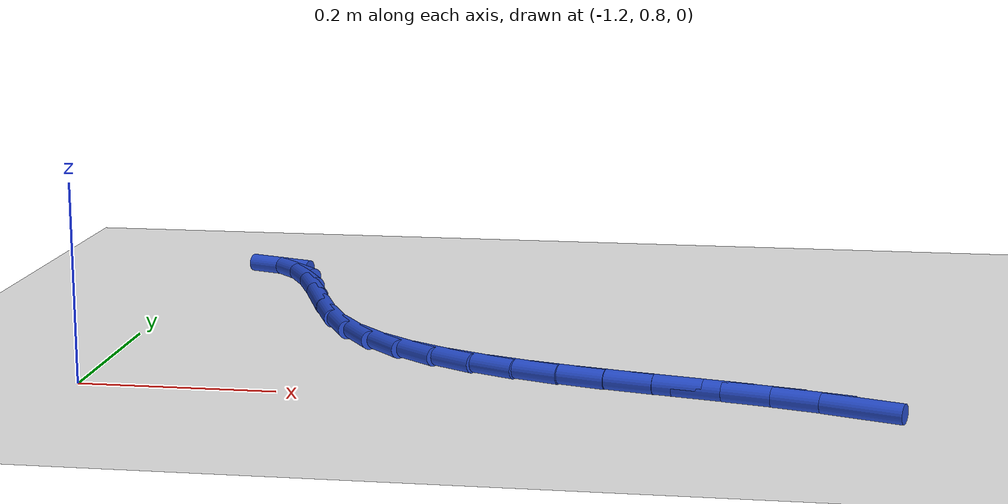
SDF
<sdf version="1.6">
 <world name="default">
  <model name="ground_plane">
   <static>1</static>
   <link name="link">
    <collision name="collision">
     <geometry><plane><normal>0 0 1</normal><size>100 100</size></plane></geometry>
     <surface><friction><ode><mu>100</mu><mu2>50</mu2></ode></friction></surface>
    </collision>
    <visual name="visual">
     <cast_shadows>0</cast_shadows>
     <geometry><plane><normal>0 0 1</normal><size>100 100</size></plane></geometry>
     <material>
      <script><uri>file://media/materials/scripts/gazebo.material</uri><name>Gazebo/WhiteGlow</name></script>
     </material>
    </visual>
   </link>
  </model>
  <model name="line">
   <link name="link_20">
    <pose>-0.43947029616138683 0.7882605560169792 0.01 0 1.57 -0.34804617072365196</pose>
    <collision name="collision">
     <geometry><cylinder><radius>0.01</radius><length>0.08</length></cylinder></geometry>
    </collision>
    <visual name="visual">
     <material>
      <script><name>Gazebo/Blue</name><uri>file://media/materials/scripts/gazebo.material</uri></script>
     </material>
     <geometry><cylinder><radius>0.01</radius><length>0.08</length></cylinder></geometry>
    </visual>
   </link>
   <link name="link_21">
    <pose>-0.4847260487259708 0.8046800626690344 0.01 0 1.57 -0.28691967845813743</pose>
    <collision name="collision">
     <geometry><cylinder><radius>0.01</radius><length>0.08</length></cylinder></geometry>
    </collision>
    <visual name="visual">
     <material>
      <script><name>Gazebo/Blue</name><uri>file://media/materials/scripts/gazebo.material</uri></script>
     </material>
     <geometry><cylinder><radius>0.01</radius><length>0.08</length></cylinder></geometry>
    </visual>
   </link>
   <link name="link_22">
    <pose>-0.5314928751247355 0.8184791400819844 0.01 0 1.57 -0.24708174238288394</pose>
    <collision name="collision">
     <geometry><cylinder><radius>0.01</radius><length>0.08</length></cylinder></geometry>
    </collision>
    <visual name="visual">
     <material>
      <script><name>Gazebo/Blue</name><uri>file://media/materials/scripts/gazebo.material</uri></script>
     </material>
     <geometry><cylinder><radius>0.01</radius><length>0.08</length></cylinder></geometry>
    </visual>
   </link>
   <link name="link_23">
    <pose>-0.5792292818981033 0.8305199660823602 0.01 0 1.57 -0.2273875629762651</pose>
    <collision name="collision">
     <geometry><cylinder><radius>0.01</radius><length>0.08</length></cylinder></geometry>
    </collision>
    <visual name="visual">
     <material>
      <script><name>Gazebo/Blue</name><uri>file://media/materials/scripts/gazebo.material</uri></script>
     </material>
     <geometry><cylinder><radius>0.01</radius><length>0.08</length></cylinder></geometry>
    </visual>
   </link>
   <link name="link_24">
    <pose>-0.6273937755864961 0.8416647184966923 0.01 0 1.57 -0.22723635034153497</pose>
    <collision name="collision">
     <geometry><cylinder><radius>0.01</radius><length>0.08</length></cylinder></geometry>
    </collision>
    <visual name="visual">
     <material>
      <script><name>Gazebo/Blue</name><uri>file://media/materials/scripts/gazebo.material</uri></script>
     </material>
     <geometry><cylinder><radius>0.01</radius><length>0.08</length></cylinder></geometry>
    </visual>
   </link>
   <link name="link_25">
    <pose>-0.6754448627303362 0.852775575151511 0.01 0 1.57 -0.24676687477948778</pose>
    <collision name="collision">
     <geometry><cylinder><radius>0.01</radius><length>0.08</length></cylinder></geometry>
    </collision>
    <visual name="visual">
     <material>
      <script><name>Gazebo/Blue</name><uri>file://media/materials/scripts/gazebo.material</uri></script>
     </material>
     <geometry><cylinder><radius>0.01</radius><length>0.08</length></cylinder></geometry>
    </visual>
   </link>
   <link name="link_26">
    <pose>-0.722841049870046 0.8647147138733469 0.01 0 1.57 -0.28687648122449777</pose>
    <collision name="collision">
     <geometry><cylinder><radius>0.01</radius><length>0.08</length></cylinder></geometry>
    </collision>
    <visual name="visual">
     <material>
      <script><name>Gazebo/Blue</name><uri>file://media/materials/scripts/gazebo.material</uri></script>
     </material>
     <geometry><cylinder><radius>0.01</radius><length>0.08</length></cylinder></geometry>
    </visual>
   </link>
   <link name="link_27">
    <pose>-0.7690408435460478 0.8783443124887305 0.01 0 1.57 -0.34905444501290284</pose>
    <collision name="collision">
     <geometry><cylinder><radius>0.01</radius><length>0.08</length></cylinder></geometry>
    </collision>
    <visual name="visual">
     <material>
      <script><name>Gazebo/Blue</name><uri>file://media/materials/scripts/gazebo.material</uri></script>
     </material>
     <geometry><cylinder><radius>0.01</radius><length>0.08</length></cylinder></geometry>
    </visual>
   </link>
   <link name="link_28">
    <pose>-0.8135027502987635 0.8945265488241919 0.01 0 1.57 -0.4349102155003879</pose>
    <collision name="collision">
     <geometry><cylinder><radius>0.01</radius><length>0.08</length></cylinder></geometry>
    </collision>
    <visual name="visual">
     <material>
      <script><name>Gazebo/Blue</name><uri>file://media/materials/scripts/gazebo.material</uri></script>
     </material>
     <geometry><cylinder><radius>0.01</radius><length>0.08</length></cylinder></geometry>
    </visual>
   </link>
   <link name="link_29">
    <pose>-0.8556852766686156 0.9141236007062622 0.01 0 1.57 -0.545207552889291</pose>
    <collision name="collision">
     <geometry><cylinder><radius>0.01</radius><length>0.08</length></cylinder></geometry>
    </collision>
    <visual name="visual">
     <material>
      <script><name>Gazebo/Blue</name><uri>file://media/materials/scripts/gazebo.material</uri></script>
     </material>
     <geometry><cylinder><radius>0.01</radius><length>0.08</length></cylinder></geometry>
    </visual>
   </link>
   <link name="link_30">
    <pose>-0.8950469291960258 0.9379976459614712 0.01 0 1.57 -0.6783516136781377</pose>
    <collision name="collision">
     <geometry><cylinder><radius>0.01</radius><length>0.08</length></cylinder></geometry>
    </collision>
    <visual name="visual">
     <material>
      <script><name>Gazebo/Blue</name><uri>file://media/materials/scripts/gazebo.material</uri></script>
     </material>
     <geometry><cylinder><radius>0.01</radius><length>0.08</length></cylinder></geometry>
    </visual>
   </link>
   <link name="link_31">
    <pose>-0.9310462144214172 0.9670108624163503 0.01 0 1.57 -0.8288686219652901</pose>
    <collision name="collision">
     <geometry><cylinder><radius>0.01</radius><length>0.08</length></cylinder></geometry>
    </collision>
    <visual name="visual">
     <material>
      <script><name>Gazebo/Blue</name><uri>file://media/materials/scripts/gazebo.material</uri></script>
     </material>
     <geometry><cylinder><radius>0.01</radius><length>0.08</length></cylinder></geometry>
    </visual>
   </link>
   <link name="link_32">
    <pose>-0.9631416388852112 1.0020254278974292 0.01 0 1.57 -0.9872090528609867</pose>
    <collision name="collision">
     <geometry><cylinder><radius>0.01</radius><length>0.08</length></cylinder></geometry>
    </collision>
    <visual name="visual">
     <material>
      <script><name>Gazebo/Blue</name><uri>file://media/materials/scripts/gazebo.material</uri></script>
     </material>
     <geometry><cylinder><radius>0.01</radius><length>0.08</length></cylinder></geometry>
    </visual>
   </link>
   <link name="link_33">
    <pose>-0.9907926886231171 1.0439014381811937 0.01 0 1.57 -1.1241796847085146</pose>
    <collision name="collision">
     <geometry><cylinder><radius>0.01</radius><length>0.08</length></cylinder></geometry>
    </collision>
    <visual name="visual">
     <material>
      <script><name>Gazebo/Blue</name><uri>file://media/materials/scripts/gazebo.material</uri></script>
     </material>
     <geometry><cylinder><radius>0.01</radius><length>0.08</length></cylinder></geometry>
    </visual>
   </link>
   <link name="link_34">
    <pose>-1.0139968040161436 1.0923554941402367 0.01 0 1.57 -1.1986816421628594</pose>
    <collision name="collision">
     <geometry><cylinder><radius>0.01</radius><length>0.08</length></cylinder></geometry>
    </collision>
    <visual name="visual">
     <material>
      <script><name>Gazebo/Blue</name><uri>file://media/materials/scripts/gazebo.material</uri></script>
     </material>
     <geometry><cylinder><radius>0.01</radius><length>0.08</length></cylinder></geometry>
    </visual>
   </link>
   <link name="link_35">
    <pose>-1.034179957176001 1.1440676587543366 0.01 0 1.57 -1.218198573939741</pose>
    <collision name="collision">
     <geometry><cylinder><radius>0.01</radius><length>0.08</length></cylinder></geometry>
    </collision>
    <visual name="visual">
     <material>
      <script><name>Gazebo/Blue</name><uri>file://media/materials/scripts/gazebo.material</uri></script>
     </material>
     <geometry><cylinder><radius>0.01</radius><length>0.08</length></cylinder></geometry>
    </visual>
   </link>
   <link name="link_36">
    <pose>-1.053002596469034 1.1952195839306596 0.01 0 1.57 -1.1826969173662143</pose>
    <collision name="collision">
     <geometry><cylinder><radius>0.01</radius><length>0.08</length></cylinder></geometry>
    </collision>
    <visual name="visual">
     <material>
      <script><name>Gazebo/Blue</name><uri>file://media/materials/scripts/gazebo.material</uri></script>
     </material>
     <geometry><cylinder><radius>0.01</radius><length>0.08</length></cylinder></geometry>
    </visual>
   </link>
   <link name="link_37">
    <pose>-1.0721251702615868 1.2419929215763696 0.01 0 1.57 -1.0706252050689649</pose>
    <collision name="collision">
     <geometry><cylinder><radius>0.01</radius><length>0.08</length></cylinder></geometry>
    </collision>
    <visual name="visual">
     <material>
      <script><name>Gazebo/Blue</name><uri>file://media/materials/scripts/gazebo.material</uri></script>
     </material>
     <geometry><cylinder><radius>0.01</radius><length>0.08</length></cylinder></geometry>
    </visual>
   </link>
   <link name="link_38">
    <pose>-1.0932081269200047 1.2805693235986324 0.01 0 1.57 -0.8216123796723335</pose>
    <collision name="collision">
     <geometry><cylinder><radius>0.01</radius><length>0.08</length></cylinder></geometry>
    </collision>
    <visual name="visual">
     <material>
      <script><name>Gazebo/Blue</name><uri>file://media/materials/scripts/gazebo.material</uri></script>
     </material>
     <geometry><cylinder><radius>0.01</radius><length>0.08</length></cylinder></geometry>
    </visual>
   </link>
   <link name="link_39">
    <pose>-1.1179119148106325 1.3071304419046132 0.01 0 1.57 -0.34691109677925225</pose>
    <collision name="collision">
     <geometry><cylinder><radius>0.01</radius><length>0.08</length></cylinder></geometry>
    </collision>
    <visual name="visual">
     <material>
      <script><name>Gazebo/Blue</name><uri>file://media/materials/scripts/gazebo.material</uri></script>
     </material>
     <geometry><cylinder><radius>0.01</radius><length>0.08</length></cylinder></geometry>
    </visual>
   </link>
  </model>
 </world>
</sdf>
